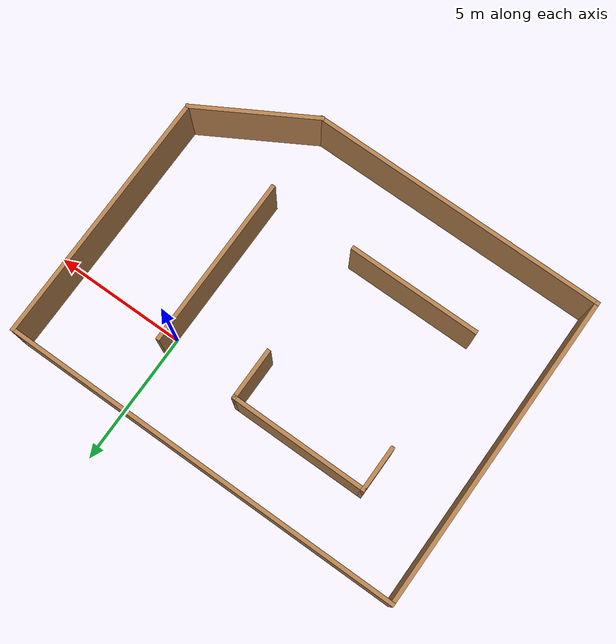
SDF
<?xml version='1.0'?>
<sdf version='1.7'>
  <model name='simple_map'>
    <pose>-3.42335 -2.86256 0 0 -0 0</pose>
    <link name='Wall_10'>
      <collision name='Wall_10_Collision'>
        <geometry>
          <box>
            <size>1.75 0.15 2.5</size>
          </box>
        </geometry>
        <pose>0 0 1.25 0 -0 0</pose>
      </collision>
      <visual name='Wall_10_Visual'>
        <pose>0 0 1.25 0 -0 0</pose>
        <geometry>
          <box>
            <size>1.75 0.15 2.5</size>
          </box>
        </geometry>
        <material>
          <script>
            <uri>file://media/materials/scripts/gazebo.material</uri>
            <name>Gazebo/Wood</name>
          </script>
          <ambient>0.921569 0.807843 0.615686 1</ambient>
        </material>
        <meta>
          <layer>0</layer>
        </meta>
      </visual>
      <pose>-4.77646 2.74651 0 0 -0 -1.5708</pose>
    </link>
    <link name='Wall_12'>
      <collision name='Wall_12_Collision'>
        <geometry>
          <box>
            <size>5 0.15 2.5</size>
          </box>
        </geometry>
        <pose>0 0 1.25 0 -0 0</pose>
      </collision>
      <visual name='Wall_12_Visual'>
        <pose>0 0 1.25 0 -0 0</pose>
        <geometry>
          <box>
            <size>5 0.15 2.5</size>
          </box>
        </geometry>
        <material>
          <script>
            <uri>file://media/materials/scripts/gazebo.material</uri>
            <name>Gazebo/Wood</name>
          </script>
          <ambient>0.435294 0.796078 0.67451 1</ambient>
        </material>
        <meta>
          <layer>0</layer>
        </meta>
      </visual>
      <pose>-2.38664 -2.78567 0 0 -0 0</pose>
    </link>
    <link name='Wall_14'>
      <collision name='Wall_14_Collision'>
        <geometry>
          <box>
            <size>6.5 0.15 2.5</size>
          </box>
        </geometry>
        <pose>0 0 1.25 0 -0 0</pose>
      </collision>
      <visual name='Wall_14_Visual'>
        <pose>0 0 1.25 0 -0 0</pose>
        <geometry>
          <box>
            <size>6.5 0.15 2.5</size>
          </box>
        </geometry>
        <material>
          <script>
            <uri>file://media/materials/scripts/gazebo.material</uri>
            <name>Gazebo/Wood</name>
          </script>
          <ambient>0.921569 0.807843 0.615686 1</ambient>
        </material>
        <meta>
          <layer>0</layer>
        </meta>
      </visual>
      <pose>3.49055 0.230791 0 0 -0 -1.5708</pose>
    </link>
    <link name='Wall_16'>
      <collision name='Wall_16_Collision'>
        <geometry>
          <box>
            <size>11.25 0.15 2.5</size>
          </box>
        </geometry>
        <pose>0 0 1.25 0 -0 0</pose>
      </collision>
      <visual name='Wall_16_Visual'>
        <pose>0 0 1.25 0 -0 0</pose>
        <geometry>
          <box>
            <size>11.25 0.15 2.5</size>
          </box>
        </geometry>
        <material>
          <script>
            <uri>file://media/materials/scripts/gazebo.material</uri>
            <name>Gazebo/Wood</name>
          </script>
          <ambient>0.996078 0.47451 0.0196078 1</ambient>
        </material>
        <meta>
          <layer>0</layer>
        </meta>
      </visual>
      <pose>-2.00558 -5.91134 0 0 -0 0</pose>
    </link>
    <link name='Wall_17'>
      <collision name='Wall_17_Collision'>
        <geometry>
          <box>
            <size>4.75 0.15 2.5</size>
          </box>
        </geometry>
        <pose>0 0 1.25 0 -0 0</pose>
      </collision>
      <visual name='Wall_17_Visual'>
        <pose>0 0 1.25 0 -0 0</pose>
        <geometry>
          <box>
            <size>4.75 0.15 2.5</size>
          </box>
        </geometry>
        <material>
          <script>
            <uri>file://media/materials/scripts/gazebo.material</uri>
            <name>Gazebo/Wood</name>
          </script>
          <ambient>0.996078 0.47451 0.0196078 1</ambient>
        </material>
        <meta>
          <layer>0</layer>
        </meta>
      </visual>
      <pose>5.53627 -4.76134 0 0 -0 0.523599</pose>
    </link>
    <link name='Wall_18'>
      <collision name='Wall_18_Collision'>
        <geometry>
          <box>
            <size>9.70001 0.15 2.5</size>
          </box>
        </geometry>
        <pose>0 0 1.25 0 -0 0</pose>
      </collision>
      <visual name='Wall_18_Visual'>
        <pose>0 0 1.25 0 -0 0</pose>
        <geometry>
          <box>
            <size>9.70001 0.15 2.5</size>
          </box>
        </geometry>
        <material>
          <script>
            <uri>file://media/materials/scripts/gazebo.material</uri>
            <name>Gazebo/Wood</name>
          </script>
          <ambient>0.996078 0.47451 0.0196078 1</ambient>
        </material>
        <meta>
          <layer>0</layer>
        </meta>
      </visual>
      <pose>7.53627 1.16366 0 0 -0 1.56909</pose>
    </link>
    <link name='Wall_2'>
      <collision name='Wall_2_Collision'>
        <geometry>
          <box>
            <size>12 0.15 2.5</size>
          </box>
        </geometry>
        <pose>0 0 1.25 0 -0 0</pose>
      </collision>
      <visual name='Wall_2_Visual'>
        <pose>0 0 1.25 0 -0 0</pose>
        <geometry>
          <box>
            <size>12 0.15 2.5</size>
          </box>
        </geometry>
        <material>
          <script>
            <uri>file://media/materials/scripts/gazebo.material</uri>
            <name>Gazebo/Wood</name>
          </script>
          <ambient>0.435294 0.796078 0.67451 1</ambient>
        </material>
        <meta>
          <layer>0</layer>
        </meta>
      </visual>
      <pose>-7.55558 0.013662 0 0 -0 -1.5708</pose>
    </link>
    <link name='Wall_5'>
      <collision name='Wall_5_Collision'>
        <geometry>
          <box>
            <size>15.25 0.15 2.5</size>
          </box>
        </geometry>
        <pose>0 0 1.25 0 -0 0</pose>
      </collision>
      <visual name='Wall_5_Visual'>
        <pose>0 0 1.25 0 -0 0</pose>
        <geometry>
          <box>
            <size>15.25 0.15 2.5</size>
          </box>
        </geometry>
        <material>
          <script>
            <uri>file://media/materials/scripts/gazebo.material</uri>
            <name>Gazebo/Wood</name>
          </script>
          <ambient>0.435294 0.796078 0.67451 1</ambient>
        </material>
        <meta>
          <layer>0</layer>
        </meta>
      </visual>
      <pose>-0.005584 5.93866 0 0 -0 3.14159</pose>
    </link>
    <link name='Wall_7'>
      <collision name='Wall_7_Collision'>
        <geometry>
          <box>
            <size>5.25 0.15 2.5</size>
          </box>
        </geometry>
        <pose>0 0 1.25 0 -0 0</pose>
      </collision>
      <visual name='Wall_7_Visual'>
        <pose>0 0 1.25 0 -0 0</pose>
        <geometry>
          <box>
            <size>5.25 0.15 2.5</size>
          </box>
        </geometry>
        <material>
          <script>
            <uri>file://media/materials/scripts/gazebo.material</uri>
            <name>Gazebo/Wood</name>
          </script>
          <ambient>0.921569 0.807843 0.615686 1</ambient>
        </material>
        <meta>
          <layer>0</layer>
        </meta>
      </visual>
      <pose>-2.22646 3.54651 0 0 -0 0</pose>
    </link>
    <link name='Wall_8'>
      <collision name='Wall_8_Collision'>
        <geometry>
          <box>
            <size>2 0.15 2.5</size>
          </box>
        </geometry>
        <pose>0 0 1.25 0 -0 0</pose>
      </collision>
      <visual name='Wall_8_Visual'>
        <pose>0 0 1.25 0 -0 0</pose>
        <geometry>
          <box>
            <size>2 0.15 2.5</size>
          </box>
        </geometry>
        <material>
          <script>
            <uri>file://media/materials/scripts/gazebo.material</uri>
            <name>Gazebo/Wood</name>
          </script>
          <ambient>0.921569 0.807843 0.615686 1</ambient>
        </material>
        <meta>
          <layer>0</layer>
        </meta>
      </visual>
      <pose>0.323539 2.62151 0 0 -0 -1.5708</pose>
    </link>
    <static>1</static>
  </model>
</sdf>
